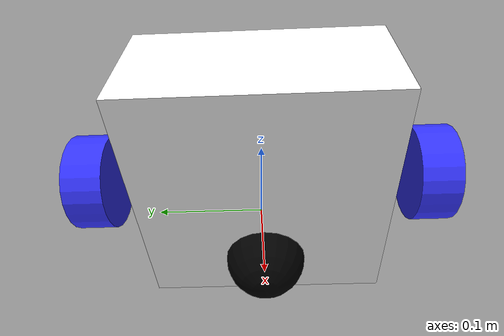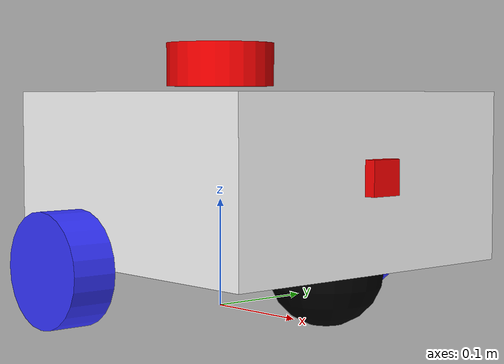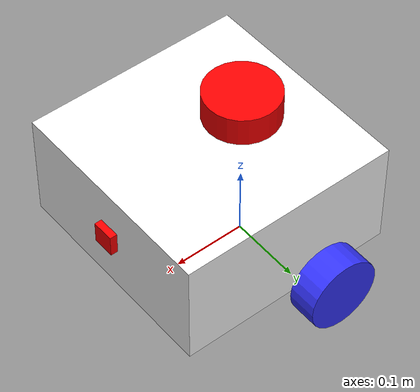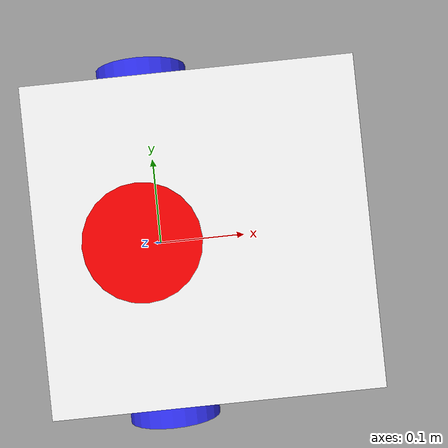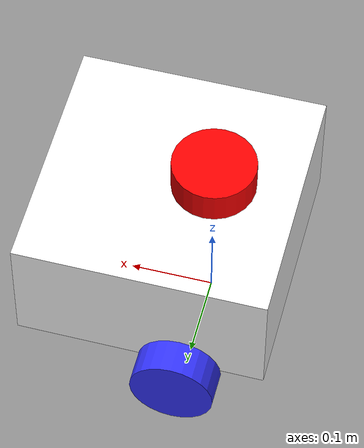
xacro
<?xml version="1.0"?>
<robot xmlns:xacro="http://www.ros.org/wiki/xacro"  name="robot">

   <xacro:include filename="$(find my_bot)/description/robot_core.xacro" />
   <xacro:include filename="$(find my_bot)/description/gazebo_control.xacro"/>
    <xacro:include filename="$(find my_bot)/description/lidar.xacro"/>
     <xacro:include filename="$(find my_bot)/description/depth_camera.xacro"/>
</robot>

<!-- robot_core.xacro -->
<robot xmlns:xacro="http://www.ros.org/wiki/xacro" >
  <xacro:include filename="$(find my_bot)/description/inertial_macros.xacro" />
   <material name="white">
     <color rgba="1 1 1 1"/>
     </material>
     <material name="orange">
      <color rgba="1 0.3 0.1 1"/>
     </material>

      <material name="blue">
     <color rgba="0.2 0.2 1 1"/>
     </material>

     <material name="red">
     <color rgba="1 0 0 1"/>
     </material>

      <material name="black">
     <color rgba="0 0 0 1"/>
     </material>
     <!--BASE LINK -->
     <link name="base_link">
      </link>

     <!-- CHASSIS LINK -->
     <joint name="chassis_joint" type="fixed">
         <parent link="base_link"/>
          <child link="chassis"/>
           <origin xyz="-0.1 0 0.05"/>
     </joint>

     <link name="chassis">
         <visual>
               <origin xyz="0.15 0 0.075"/>
              <geometry>
                 <box size="0.3 0.3 0.15"/>
               </geometry>
                <material name="white"/>
          </visual>
          <collision>
               <origin xyz="0.15 0 0.075"/>
              <geometry>
                 <box size="0.3 0.3 0.15"/>
               </geometry>
                <material name="white"/>
          </collision>
     <xacro:inertial_box mass="0.5" x="0.3" y="0.3" z="0.15">
     <origin xyz="0.15 0 0.075" rpy="0 0 0"/>
     </xacro:inertial_box>
     </link>
     <gazebo reference="chassis">
        <material>Gazebo/White</material>
      </gazebo>

      <joint name="left_wheel_joint" type="continuous">
         <parent link="base_link"/>
         <child link="left_wheel"/>
         <origin xyz="0 0.175 0.05" rpy="-${pi/2} 0 0"/>
         <axis xyz="0 0 1"/>
         </joint>

         <link name="left_wheel">
              <visual>
                  <geometry>
                   <cylinder radius="0.05" length="0.04"/>
                  </geometry>
                  <material name="blue"/>
              </visual>
              <collision>
                  <geometry>
                   <cylinder radius="0.05" length="0.04"/>
                  </geometry>
                  <material name="blue"/>
              </collision>
              <xacro:inertial_cylinder mass="0.1" length="0.04" radius="0.05">
              <origin xyz="0 0 0" rpy="0 0 0"/>
              </xacro:inertial_cylinder>
            </link>

          <gazebo reference="left_wheel">
        <material>Gazebo/blue</material>
      </gazebo>

       <joint name="right_wheel_joint" type="continuous">
         <parent link="base_link"/>
         <child link="right_wheel"/>
         <origin xyz="0 -0.175 0.05" rpy="${pi/2} 0 0"/>
         <axis xyz="0 0 -1"/>
         </joint>

         <link name="right_wheel">
              <visual>
                  <geometry>
                   <cylinder radius="0.05" length="0.04"/>
                  </geometry>
                  <material name="blue"/>
              </visual>
              <collision>
                  <geometry>
                   <cylinder radius="0.05" length="0.04"/>
                  </geometry>
                  <material name="blue"/>
              </collision>
              <xacro:inertial_cylinder mass="0.1" length="0.04" radius="0.05">
              <origin xyz="0 0 0" rpy="0 0 0"/>
              </xacro:inertial_cylinder>
            </link>

               <gazebo reference="right_wheel">
        <material>Gazebo/blue</material>
      </gazebo>

  <joint name="caster_wheel_joint" type="fixed">
    <parent link="chassis"/>
    <child link="caster_wheel"/>
    <origin xyz="0.24 0 0"/>
   </joint>
   <link name="caster_wheel" >
     <visual>
         <geometry>
              <sphere radius="0.05"/>
          </geometry>
          <material name="black"/>
     </visual>
     <collision>
         <geometry>
              <sphere radius="0.05"/>
          </geometry>
          <material name="black"/>
     </collision>
     <xacro:inertial_sphere mass="0.1" radius="0.05">
              <origin xyz="0 0 0" rpy="0 0 0"/>
              </xacro:inertial_sphere>
     </link>
     <gazebo reference="caster_wheel">
       <material>Gazebo/Black</material>
       <mu1 value="0.001"/>
       <mu2 value="0.001"/>
       </gazebo>

</robot>

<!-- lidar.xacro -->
<robot xmlns:xacro="http://www.ros.org/wiki/xacro">

  <joint name="laser_joint" type="fixed">
   <parent link="chassis"/>
   <child link="laser_frame"/>
   <origin xyz="0.1 0 0.175" rpy="0 0 0"/>
   </joint>

   <link name="laser_frame">
               <visual>
                  <geometry>
                        <cylinder radius="0.05" length="0.04"/>
                  </geometry>
                  <material name="red"/>
              </visual>
              <collision>
                  <geometry>
                   <cylinder radius="0.05" length="0.04"/>
                  </geometry>
                  <material name="blue"/>
              </collision>
              <xacro:inertial_cylinder mass="0.1" length="0.04" radius="0.05">
              <origin xyz="0 0 0" rpy="0 0 0"/>
              </xacro:inertial_cylinder>
   </link>

   <gazebo reference="laser_frame">
        <sensor name="laser" type="ray">
          <pose>0 0 0 0 0 0</pose>
          <visualize>false</visualize>
          <update_rate>10</update_rate>
          <ray>
             <scan>
                <horizontal>
                    <samples>360</samples>
                    <min_angle>-3.14</min_angle>
                    <max_angle>3.14</max_angle>
                 </horizontal>
                    </scan>
                    <range>
                       <min>0.3</min>
                       <max>12</max>
                     </range>
                   </ray>
                   <plugin name="laser_controller" filename="libgazebo_ros_ray_sensor.so">
                      <ros>
                          <remapping>~/out:=scan</remapping>
                       </ros>
                      <output_type>sensor_msgs/LaserScan</output_type>
                      <frame_name>laser_frame</frame_name>
                      </plugin>
                 </sensor>
              </gazebo>

</robot>

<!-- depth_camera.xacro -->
<robot xmlns:xacro="http://www.ros.org/wiki/xacro">

<joint name="camera_joint" type="fixed">
  <parent link="chassis"/>
  <child  link="camera_link"/>
  <origin xyz="0.305 0 0.08" rpy="0 0 0"/>
  </joint>

  <link name="camera_link">
    <visual>
      <geometry>
          <box size="0.010 0.03 0.03"/>
      </geometry>
      <material name="red"/>
      </visual>
     </link>

     <joint name="camera_optical_joint" type="fixed">
         <parent link="camera_link"/>
         <child link="camera_link_optical"/>
         <origin xyz="0 0 0" rpy="${-pi/2} 0 ${-pi/2}"/>
      </joint>

      <link name="camera_link_optical">
      </link>

      <gazebo reference="camera_link">
        <material>Gazebo/Red</material>

           <sensor name="camera" type="depth">
            <pose>0 0 0 0 0 0</pose>
            <visualize>true</visualize>
            <update_rate>10</update_rate>
            <camera>
                <horizontal_fov>1.089</horizontal_fov>
                <image>
                      <format>R8G8B8</format>
                      <width>640</width>
                      <height>400</height>
                 </image>
                <clip>
                    <near>0.05</near>
                    <far>8.0</far>
                 </clip>
            </camera>
             <plugin name="camera_controller" filename="libgazebo_ros_camera.so">
                <frame_name>camera_link_optical</frame_name>
                <min_depth>0.1</min_depth>
                <max_depth>100.0</max_depth>
              </plugin>
            </sensor>
           </gazebo>
 </robot>
